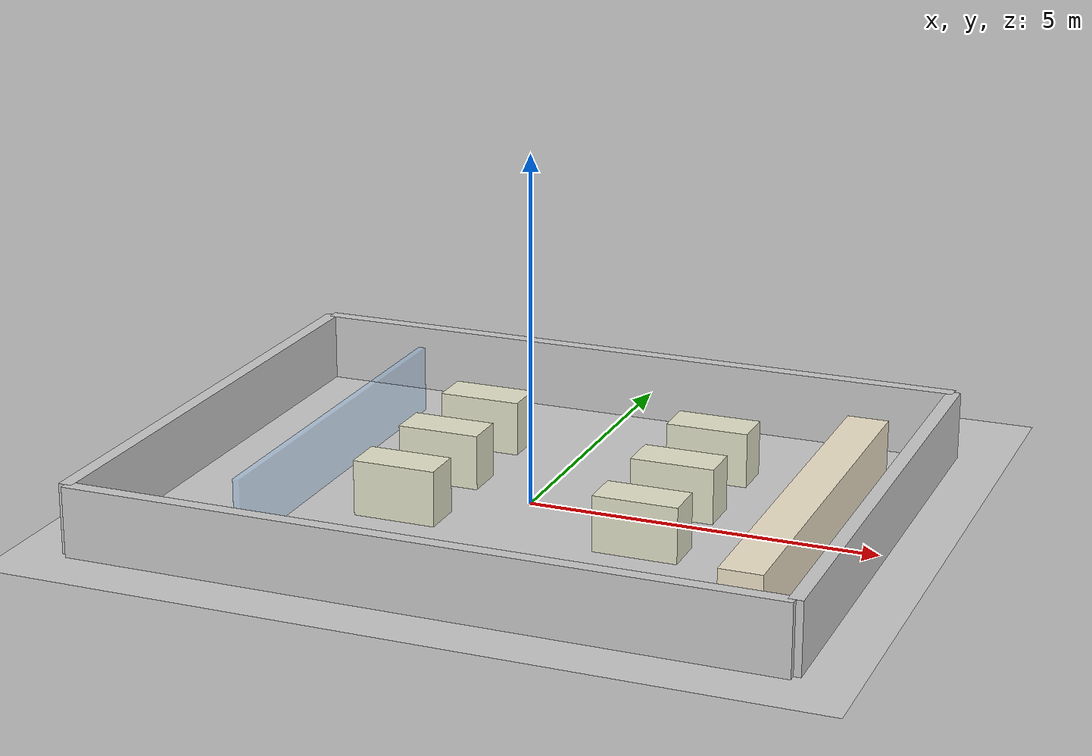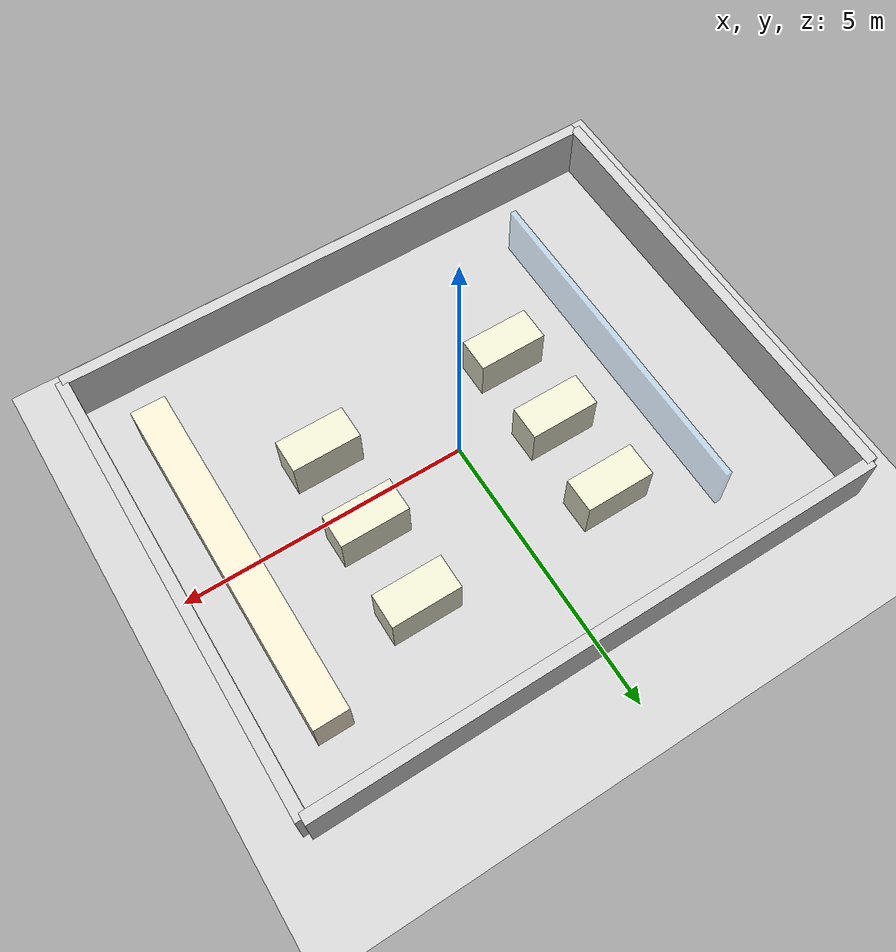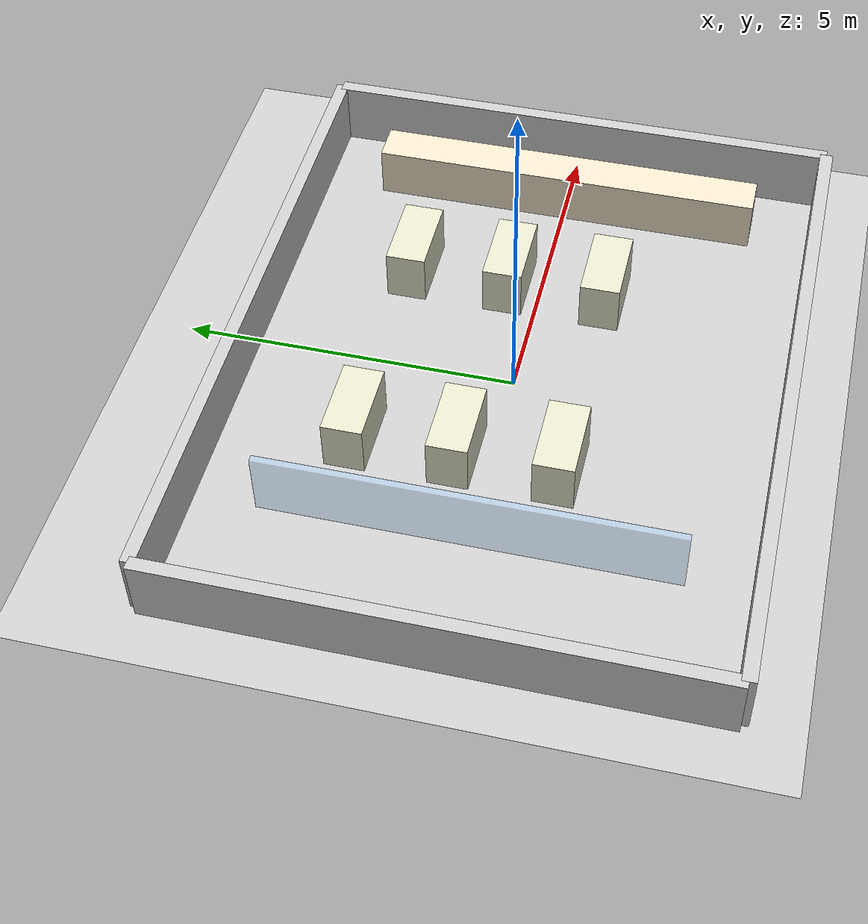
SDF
<?xml version="1.0" ?>
<sdf version="1.6">
  <world name="lab_world">

    <include>
      <uri>model://sun</uri>
    </include>
    <include>
      <uri>model://ground_plane</uri>
    </include>

    <!-- ===== BOUNDARY WALLS ===== -->
    <model name="wall_south">
      <static>true</static>
      <pose>0 -4 0.5 0 0 0</pose>
      <link name="link">
        <collision name="col"><geometry><box><size>10 0.2 1</size></box></geometry></collision>
        <visual name="vis"><geometry><box><size>10 0.2 1</size></box></geometry>
          <material><ambient>0.8 0.8 0.8 1</ambient></material>
        </visual>
      </link>
    </model>

    <model name="wall_north">
      <static>true</static>
      <pose>0 4 0.5 0 0 0</pose>
      <link name="link">
        <collision name="col"><geometry><box><size>10 0.2 1</size></box></geometry></collision>
        <visual name="vis"><geometry><box><size>10 0.2 1</size></box></geometry>
          <material><ambient>0.8 0.8 0.8 1</ambient></material>
        </visual>
      </link>
    </model>

    <model name="wall_west">
      <static>true</static>
      <pose>-5 0 0.5 0 0 0</pose>
      <link name="link">
        <collision name="col"><geometry><box><size>0.2 8 1</size></box></geometry></collision>
        <visual name="vis"><geometry><box><size>0.2 8 1</size></box></geometry>
          <material><ambient>0.8 0.8 0.8 1</ambient></material>
        </visual>
      </link>
    </model>

    <model name="wall_east">
      <static>true</static>
      <pose>5 0 0.5 0 0 0</pose>
      <link name="link">
        <collision name="col"><geometry><box><size>0.2 8 1</size></box></geometry></collision>
        <visual name="vis"><geometry><box><size>0.2 8 1</size></box></geometry>
          <material><ambient>0.8 0.8 0.8 1</ambient></material>
        </visual>
      </link>
    </model>

    <!-- ===== GLASS PARTITION (left side) ===== -->
    <model name="glass_left">
      <static>true</static>
      <pose>-3 0 0.5 0 0 0</pose>
      <link name="link">
        <collision name="col"><geometry><box><size>0.1 6 1</size></box></geometry></collision>
        <visual name="vis"><geometry><box><size>0.1 6 1</size></box></geometry>
          <material><ambient>0.6 0.8 1 0.4</ambient></material>
        </visual>
      </link>
    </model>

    <!-- ===== WORKSTATION TABLES (left cluster) ===== -->
    <model name="table_1">
      <static>true</static>
      <pose>-1.5 2 0.4 0 0 0</pose>
      <link name="link">
        <collision name="col"><geometry><box><size>1.2 0.6 0.8</size></box></geometry></collision>
        <visual name="vis"><geometry><box><size>1.2 0.6 0.8</size></box></geometry>
          <material><ambient>0.9 0.9 0.8 1</ambient></material>
        </visual>
      </link>
    </model>

    <model name="table_2">
      <static>true</static>
      <pose>-1.5 0.5 0.4 0 0 0</pose>
      <link name="link">
        <collision name="col"><geometry><box><size>1.2 0.6 0.8</size></box></geometry></collision>
        <visual name="vis"><geometry><box><size>1.2 0.6 0.8</size></box></geometry>
          <material><ambient>0.9 0.9 0.8 1</ambient></material>
        </visual>
      </link>
    </model>

    <model name="table_3">
      <static>true</static>
      <pose>-1.5 -1 0.4 0 0 0</pose>
      <link name="link">
        <collision name="col"><geometry><box><size>1.2 0.6 0.8</size></box></geometry></collision>
        <visual name="vis"><geometry><box><size>1.2 0.6 0.8</size></box></geometry>
          <material><ambient>0.9 0.9 0.8 1</ambient></material>
        </visual>
      </link>
    </model>

    <!-- ===== WORKSTATION TABLES (right cluster) ===== -->
    <model name="table_4">
      <static>true</static>
      <pose>2 2 0.4 0 0 0</pose>
      <link name="link">
        <collision name="col"><geometry><box><size>1.2 0.6 0.8</size></box></geometry></collision>
        <visual name="vis"><geometry><box><size>1.2 0.6 0.8</size></box></geometry>
          <material><ambient>0.9 0.9 0.8 1</ambient></material>
        </visual>
      </link>
    </model>

    <model name="table_5">
      <static>true</static>
      <pose>2 0.5 0.4 0 0 0</pose>
      <link name="link">
        <collision name="col"><geometry><box><size>1.2 0.6 0.8</size></box></geometry></collision>
        <visual name="vis"><geometry><box><size>1.2 0.6 0.8</size></box></geometry>
          <material><ambient>0.9 0.9 0.8 1</ambient></material>
        </visual>
      </link>
    </model>

    <model name="table_6">
      <static>true</static>
      <pose>2 -1 0.4 0 0 0</pose>
      <link name="link">
        <collision name="col"><geometry><box><size>1.2 0.6 0.8</size></box></geometry></collision>
        <visual name="vis"><geometry><box><size>1.2 0.6 0.8</size></box></geometry>
          <material><ambient>0.9 0.9 0.8 1</ambient></material>
        </visual>
      </link>
    </model>

    <!-- ===== LONG DESK (right side) ===== -->
    <model name="long_desk">
      <static>true</static>
      <pose>4 0 0.4 0 0 0</pose>
      <link name="link">
        <collision name="col"><geometry><box><size>0.6 6 0.8</size></box></geometry></collision>
        <visual name="vis"><geometry><box><size>0.6 6 0.8</size></box></geometry>
          <material><ambient>0.95 0.9 0.8 1</ambient></material>
        </visual>
      </link>
    </model>

  </world>
</sdf>
